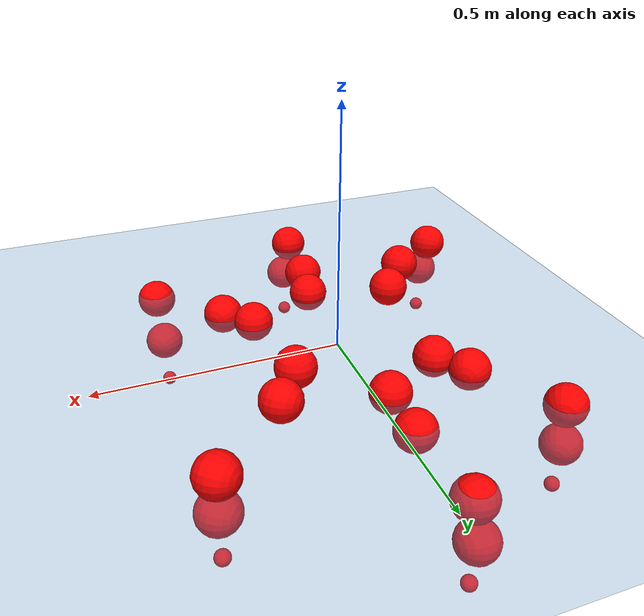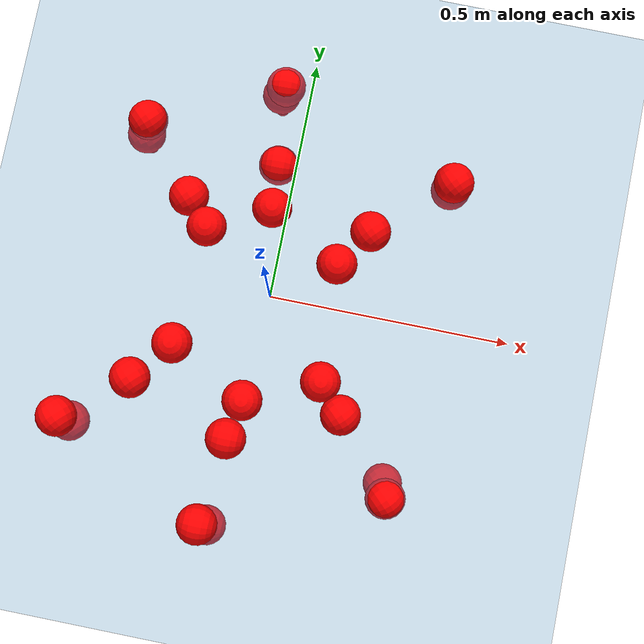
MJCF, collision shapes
<mujoco model="Golem">
  <compiler angle="radian" assetdir="assets" balanceinertia="true" inertiafromgeom="false"/>

  <option timestep="0.005" density="1.2" viscosity="2e-05"/>

  <size nkey="1"/>

  <visual>
    <quality shadowsize="8192"/>
    <map shadowclip="0.5"/>
  </visual>

  <default>
    <default class="/">
      <joint armature="0.01" damping="0.01" frictionloss="0.01"/>
      <geom contype="0" conaffinity="0" group="1" solref="-1000 -80"/>
      <site size="0.01 0.005 0.005" group="5"/>
      <general forcelimited="true" biastype="affine" gainprm="25" biasprm="0 -25 -0.5"/>
      <default class="visual">
        <geom type="mesh" group="2"/>
      </default>
      <default class="collision">
        <geom group="3"/>
      </default>
      <default class="foot">
        <geom size="0.01 0 0" condim="6" group="4" priority="1" solimp="0.015 1 0.01"/>
      </default>
      <default class="reward_collision_sphere">
        <geom group="5" rgba="1 0 0 1"/>
      </default>
    </default>
  </default>

  <asset>
    <texture type="skybox" colorspace="auto" name="//unnamed_texture_0" builtin="gradient" rgb1="0.95 0.95 0.95" rgb2="0.95 0.95 0.95" width="100" height="600"/>
    <texture type="2d" colorspace="auto" name="texplane" builtin="checker" rgb1="0.345 0.575 0.748" rgb2="0.345 0.575 0.748" markrgb="1 1 1" width="512" height="512"/>
    <material name="MatPlane" class="/" texture="texplane" texuniform="true" texrepeat="2 2" specular="0.9"/>
    <mesh name="body" class="/" file="body.stl" scale="0.001 0.001 0.001"/>
    <mesh name="coxa" class="/" file="coxa.stl" scale="0.001 0.001 0.001"/>
    <mesh name="femur" class="/" file="femur.stl" scale="0.001 0.001 0.001"/>
    <mesh name="tibia" class="/" file="tibia.stl" scale="0.001 0.001 0.001"/>
    <mesh name="tarsus" class="/" file="tarsus.stl" scale="0.001 0.001 0.001"/>
  </asset>

  <worldbody>
    <geom name="floor" class="/" size="100 100 0.125" type="plane" group="0" material="MatPlane"/>
    <light name="toplight_shadow" class="/" pos="0 0 5" dir="0.0990148 0.0990148 -0.990148" type="directional" ambient="0.04 0.04 0.04" diffuse="0.55 0.55 0.55" specular="0.12 0.12 0.12"/>
    <light name="toplight_fill" class="/" pos="0 0 5" dir="0.0990148 0.0990148 -0.990148" type="directional" castshadow="false" ambient="0.04 0.04 0.04" diffuse="0.3 0.3 0.3" specular="0.08 0.08 0.08"/>
    <body name="trunk" pos="-0.0181605 -0.0130066 -0.0123281" quat="1 1.105e-05 -1.65903e-05 -3.68395e-06">
      <inertial pos="-0.00864774 -0.00743464 -0.00747809" quat="0.999779 0.0169178 0.0050231 -0.0114298" mass="4.43904" diaginertia="0.0154785 0.156197 0.000143417"/>
      <joint name="//unnamed_joint_0" type="free"/>
      <geom name="//unnamed_geom_1" class="/" pos="0 0 0.0275619" quat="1 0 0 0" type="mesh" rgba="0.9 0.9 0.9 1" mesh="body"/>
      <site name="imu" class="/" pos="0.0461408 -0.0840115 -0.00257744" size="0.0105677"/>
      <camera name="track" class="/" pos="0 -3.44148 0" quat="0.707107 0.707107 0 0" mode="trackcom"/>
      <camera name="ego_camera" class="/" pos="0.132459 0 0.0430655" quat="-0.5 -0.5 0.5 0.5"/>
      <body name="coxa_RR" pos="-0.179684 -0.14392 0.0458537" quat="0.384072 0.000126468 5.63401e-05 -0.923303">
        <inertial pos="0.00306799 0.0188676 0.0109866" quat="0.997391 0.0527197 -0.00895346 -0.0484967" mass="0.264067" diaginertia="0.011716 0.161356 0.00015946"/>
        <joint name="coxa_joint_RR" class="/" pos="0 0 0" axis="0.0443955 -0.0336172 -0.998448" stiffness="0.0843354" range="-3.09477 3.07855" armature="0.0183201" damping="0.0585434" frictionloss="0.0105156"/>
        <geom name="//unnamed_geom_2" class="/" type="mesh" rgba="0.2 0.2 0.2 1" mesh="coxa"/>
        <geom name="//unnamed_geom_3" class="reward_collision_sphere" size="0.0422708" pos="-0.0305674 0 0"/>
        <body name="femur_RR" pos="0.0782107 0.0118618 0.00686351" quat="0.500415 -0.498763 0.500053 0.500767">
          <inertial pos="0.0116454 0.0103707 0.00387951" quat="0.99892 0.0447867 -0.00400809 -0.0116701" mass="0.228808" diaginertia="0.0104128 0.128688 0.000107345"/>
          <joint name="femur_joint_RR" class="/" pos="0 0 0" axis="-0.00963264 0.0433586 -0.999013" stiffness="0.0870115" range="-2.80601 3.42473" armature="0.0151606" damping="0" frictionloss="0.00207825"/>
          <geom name="//unnamed_geom_4" class="/" type="mesh" rgba="0.9 0.9 0.9 1" mesh="femur"/>
          <geom name="//unnamed_geom_5" class="reward_collision_sphere" size="0.0422708"/>
          <body name="tibia_RR" pos="0.0138009 -0.168256 -0.0190953" quat="0.00402115 0.999956 -0.00727418 -0.00424542">
            <inertial pos="0.0167077 0.00758521 1.42572e-05" quat="0.999793 0.00407376 0.00395337 -0.019556" mass="0.221945" diaginertia="0.0137129 0.194886 0.000201331"/>
            <joint name="tibia_joint_RR" class="/" pos="0 0 0" axis="-0.0744463 0.0354201 0.996596" stiffness="0.0179639" range="-3.36322 2.87327" armature="0.0143648" damping="0.0166296" frictionloss="0.0108407"/>
            <geom name="//unnamed_geom_6" class="/" type="mesh" rgba="0.2 0.2 0.2 1" mesh="tibia"/>
            <geom name="//unnamed_geom_7" class="reward_collision_sphere" size="0.0422708"/>
            <body name="tarsus_RR" pos="0.0741238 -0.00558944 -0.0162565" quat="1 0.000549908 0.000205754 -0.000598494">
              <inertial pos="0.0445494 -0.000462031 -0.0114868" quat="0.470191 0.50362 0.529585 0.494799" mass="0.239229" diaginertia="0.00934024 0.123506 0.000151258"/>
              <joint name="tarsus_joint_RR" class="/" pos="0 0 0" axis="0.00283622 -0.00106918 0.999995" stiffness="0.000460057" range="-2.80757 2.8658" armature="0.0152024" damping="0.0127385" frictionloss="0.0167247"/>
              <geom name="//unnamed_geom_8" class="/" type="mesh" rgba="0.9 0.9 0.9 1" mesh="tarsus"/>
              <geom name="foot_1" class="foot" size="0.0117781" pos="0.114118 0 0" quat="0 -0.707107 0 0.707107"/>
              <geom name="//unnamed_geom_10" class="reward_collision_sphere" size="0.0422708"/>
              <geom name="//unnamed_geom_11" class="reward_collision_sphere" size="0.0158516" pos="0.109533 0 0"/>
              <site name="foot_1" class="foot" pos="0.114118 0 0" quat="0 -0.707107 0 0.707107" size="0.0105677"/>
            </body>
          </body>
        </body>
      </body>
      <body name="coxa_RM" pos="0.00398098 -0.239046 0.0181355" quat="0.704703 0.0014743 0.00565475 -0.709479">
        <inertial pos="-0.0146921 0.000242597 0.0114034" quat="0.998401 -0.0495625 -0.0203474 -0.0180077" mass="0.275348" diaginertia="0.0129711 0.190445 0.000125279"/>
        <joint name="coxa_joint_RM" class="/" pos="0 0 0" axis="0.0157926 0.035936 -0.999229" range="-2.93423 2.99001" armature="0.0115634" damping="0.0772048" frictionloss="0.0211105"/>
        <geom name="//unnamed_geom_12" class="/" type="mesh" rgba="0.2 0.2 0.2 1" mesh="coxa"/>
        <geom name="//unnamed_geom_13" class="reward_collision_sphere" size="0.0422708" pos="-0.0305674 0 0"/>
        <body name="femur_RM" pos="0.0515778 -0.0160914 0.00963778" quat="0.505781 -0.494147 0.502365 0.497628">
          <inertial pos="-0.00819974 0.0107509 0.00102518" quat="0.998763 0.0453423 0.0168818 -0.0114782" mass="0.190463" diaginertia="0.00831337 0.137966 0.000108768"/>
          <joint name="femur_joint_RM" class="/" pos="0 0 0" axis="-0.0524768 0.0384867 -0.99788" range="-3.25105 3.18298" armature="0.0165324" damping="0" frictionloss="0.0100488"/>
          <geom name="//unnamed_geom_14" class="/" type="mesh" rgba="0.9 0.9 0.9 1" mesh="femur"/>
          <geom name="//unnamed_geom_15" class="reward_collision_sphere" size="0.0422708"/>
          <body name="tibia_RM" pos="0.0060269 -0.181545 -0.0186382" quat="0.000752283 0.999997 -0.00211441 0.000446578">
            <inertial pos="-0.0140381 0.0185987 -0.00393455" quat="0.996393 -0.0247702 0.0664281 -0.0466285" mass="0.321442" diaginertia="0.012928 0.12957 0.000181385"/>
            <joint name="tibia_joint_RM" class="/" pos="0 0 0" axis="0.0024957 -0.00159009 0.999996" stiffness="0.00478468" range="-2.79923 2.74165" armature="0.0113502" damping="0" frictionloss="0.00626473"/>
            <geom name="//unnamed_geom_16" class="/" type="mesh" rgba="0.2 0.2 0.2 1" mesh="tibia"/>
            <geom name="//unnamed_geom_17" class="reward_collision_sphere" size="0.0422708"/>
            <body name="tarsus_RM" pos="0.0865781 0.00740814 -0.0137461" quat="0.999999 -0.000246949 0.000522644 -0.00106291">
              <inertial pos="0.0532754 0.0138799 -0.0150216" quat="0.439441 0.466025 0.538165 0.547805" mass="0.185162" diaginertia="0.0135368 0.178862 0.000180056"/>
              <joint name="tarsus_joint_RM" class="/" pos="0 0 0" axis="-0.00477084 -0.0242736 0.999694" stiffness="0.0712017" range="-3.41017 3.31617" armature="0.00454275" damping="0.0158932" frictionloss="0.0122572"/>
              <geom name="//unnamed_geom_18" class="/" type="mesh" rgba="0.9 0.9 0.9 1" mesh="tarsus"/>
              <geom name="foot_2" class="foot" size="0.00713063" pos="0.114118 0 0" quat="0 -0.707107 0 0.707107"/>
              <geom name="//unnamed_geom_20" class="reward_collision_sphere" size="0.0422708"/>
              <geom name="//unnamed_geom_21" class="reward_collision_sphere" size="0.0158516" pos="0.109533 0 0"/>
              <site name="foot_2" class="foot" pos="0.114118 0 0" quat="0 -0.707107 0 0.707107" size="0.0105677"/>
            </body>
          </body>
        </body>
      </body>
      <body name="coxa_RF" pos="0.176589 -0.161168 0.0108363" quat="0.923589 0.000800524 0.00214048 -0.383378">
        <inertial pos="0.00934362 -0.012487 -0.00430033" quat="0.999968 0.000610491 -0.00342702 -0.00720537" mass="0.219025" diaginertia="0.0108528 0.120459 0.000153716"/>
        <joint name="coxa_joint_RF" class="/" pos="0 0 0" axis="-0.0152909 0.0192912 -0.999697" range="-3.22443 2.97025" armature="0.00200208" damping="0" frictionloss="0.00785437"/>
        <geom name="//unnamed_geom_22" class="/" type="mesh" rgba="0.2 0.2 0.2 1" mesh="coxa"/>
        <geom name="//unnamed_geom_23" class="reward_collision_sphere" size="0.0422708" pos="-0.0305674 0 0"/>
        <body name="femur_RF" pos="0.0487028 -0.00341399 -0.0014704" quat="0.495689 -0.501404 0.501061 0.501821">
          <inertial pos="-0.010724 0.0136491 -0.00439702" quat="0.9985 0.0283671 0.0426449 -0.0193506" mass="0.264581" diaginertia="0.0107544 0.20121 0.000132436"/>
          <joint name="femur_joint_RF" class="/" pos="0 0 0" axis="-0.000230038 -0.000204934 -1" range="-2.76968 2.95122" armature="0.0200568" damping="0.0231561" frictionloss="0.00246867"/>
          <geom name="//unnamed_geom_24" class="/" type="mesh" rgba="0.9 0.9 0.9 1" mesh="femur"/>
          <geom name="//unnamed_geom_25" class="reward_collision_sphere" size="0.0422708"/>
          <body name="tibia_RF" pos="0.0153809 -0.193139 -0.0191414" quat="-0.0004829 0.999998 0.00172907 0.000913265">
            <inertial pos="0.0189877 0.00501046 0.00774491" quat="0.999983 -0.000369032 -0.00534728 -0.00233" mass="0.166239" diaginertia="0.0115129 0.1132 0.000125218"/>
            <joint name="tibia_joint_RF" class="/" pos="0 0 0" axis="0.0542295 0.0749061 0.995715" range="-2.96867 3.51138" armature="0.0154203" damping="0.0156088" frictionloss="0.0110899"/>
            <geom name="//unnamed_geom_26" class="/" type="mesh" rgba="0.2 0.2 0.2 1" mesh="tibia"/>
            <geom name="//unnamed_geom_27" class="reward_collision_sphere" size="0.0422708"/>
            <body name="tarsus_RF" pos="0.102449 -0.0175261 -0.0162803" quat="0.99996 -0.00395169 0.00767278 0.00233159">
              <inertial pos="0.062327 -0.00764127 -0.00417774" quat="0.494416 0.496711 0.518695 0.48968" mass="0.246836" diaginertia="0.00974393 0.161451 0.000121435"/>
              <joint name="tarsus_joint_RF" class="/" pos="0 0 0" axis="0.0423076 -0.0513964 0.997782" stiffness="0.0519941" range="-2.92979 3.30753" armature="0.0041971" damping="0" frictionloss="0.0168827"/>
              <geom name="//unnamed_geom_28" class="/" type="mesh" rgba="0.9 0.9 0.9 1" mesh="tarsus"/>
              <geom name="foot_3" class="foot" size="0.00465214" pos="0.114118 0 0" quat="0 -0.707107 0 0.707107"/>
              <geom name="//unnamed_geom_30" class="reward_collision_sphere" size="0.0422708"/>
              <geom name="//unnamed_geom_31" class="reward_collision_sphere" size="0.0158516" pos="0.109533 0 0"/>
              <site name="foot_3" class="foot" pos="0.114118 0 0" quat="0 -0.707107 0 0.707107" size="0.0105677"/>
            </body>
          </body>
        </body>
      </body>
      <body name="coxa_LR" pos="-0.162636 0.152096 0.0210761" quat="0.385267 -0.000971243 -0.000287644 0.922804">
        <inertial pos="0.0176374 -0.0119519 0.0195288" quat="0.995658 -0.0684038 -0.0508017 0.0374863" mass="0.226845" diaginertia="0.00850725 0.0928018 0.000106655"/>
        <joint name="coxa_joint_LR" class="/" pos="0 0 0" axis="0.0590747 0.0672942 -0.995983" range="-2.96143 3.38418" armature="0.0173507" damping="0.0439706" frictionloss="0.018834"/>
        <geom name="//unnamed_geom_32" class="/" type="mesh" rgba="0.2 0.2 0.2 1" mesh="coxa"/>
        <geom name="//unnamed_geom_33" class="reward_collision_sphere" size="0.0422708" pos="-0.0305674 0 0"/>
        <body name="femur_LR" pos="0.0453318 -0.00453078 -0.0064322" quat="0.499605 -0.501326 0.500052 0.499014">
          <inertial pos="0.0103322 -0.00560852 0.00566054" quat="0.998039 -0.0287906 -0.0248664 -0.0497148" mass="0.235036" diaginertia="0.0100384 0.115268 0.000150341"/>
          <joint name="femur_joint_LR" class="/" pos="0 0 0" axis="0.032206 0.0570033 0.997854" range="-3.32303 3.24135" armature="0.00692269" damping="0" frictionloss="0.0206699"/>
          <geom name="//unnamed_geom_34" class="/" type="mesh" rgba="0.9 0.9 0.9 1" mesh="femur"/>
          <geom name="//unnamed_geom_35" class="reward_collision_sphere" size="0.0422708"/>
          <body name="tibia_LR" pos="0.0149776 -0.189056 -0.0167182" quat="-0.000235569 0.999962 -0.0048809 0.00719065">
            <inertial pos="-0.00476074 -0.00474028 0.000152118" quat="0.99939 -0.00597495 -0.0328904 0.010133" mass="0.176921" diaginertia="0.00879459 0.142967 0.000135875"/>
            <joint name="tibia_joint_LR" class="/" pos="0 0 0" axis="0.0491996 -0.038559 -0.998044" range="-2.89769 3.45058" armature="0.0131542" damping="0.0371494" frictionloss="0.00777289"/>
            <geom name="//unnamed_geom_36" class="/" type="mesh" rgba="0.2 0.2 0.2 1" mesh="tibia"/>
            <geom name="//unnamed_geom_37" class="reward_collision_sphere" size="0.0422708"/>
            <body name="tarsus_LR" pos="0.106472 0.00489253 -0.0153316" quat="0.99996 0.00431607 0.00758692 -0.00200663">
              <inertial pos="0.0421349 -0.000257138 0.0188639" quat="0.511072 0.493763 0.50102 0.493946" mass="0.243326" diaginertia="0.00934427 0.157347 0.000139151"/>
              <joint name="tarsus_joint_LR" class="/" pos="0 0 0" axis="-0.0561874 -0.0633737 -0.996407" stiffness="0.0218567" range="-2.81533 3.46312" armature="0.00761215" damping="0.0533005" frictionloss="0.00532111"/>
              <geom name="//unnamed_geom_38" class="/" type="mesh" rgba="0.9 0.9 0.9 1" mesh="tarsus"/>
              <geom name="foot_4" class="foot" size="0.00546074" pos="0.114118 0 0" quat="0.707107 0 -0.707107 0"/>
              <geom name="//unnamed_geom_40" class="reward_collision_sphere" size="0.0422708"/>
              <geom name="//unnamed_geom_41" class="reward_collision_sphere" size="0.0158516" pos="0.109533 0 0"/>
              <site name="foot_4" class="foot" pos="0.114118 0 0" quat="0.707107 0 -0.707107 0" size="0.0105677"/>
            </body>
          </body>
        </body>
      </body>
      <body name="coxa_LM" pos="-0.015473 0.228098 0.0112455" quat="0.703375 -0.000570645 0.00230375 0.710815">
        <inertial pos="-0.00858139 0.00992872 -0.00228844" quat="0.997669 -0.0373305 -0.0341969 0.045751" mass="0.266841" diaginertia="0.014274 0.156319 0.000170315"/>
        <joint name="coxa_joint_LM" class="/" pos="0 0 0" axis="-0.0303822 -0.0125555 -0.999459" stiffness="0.0672811" range="-3.46189 3.04112" armature="0.004263" damping="0" frictionloss="0.00234504"/>
        <geom name="//unnamed_geom_42" class="/" type="mesh" rgba="0.2 0.2 0.2 1" mesh="coxa"/>
        <geom name="//unnamed_geom_43" class="reward_collision_sphere" size="0.0422708" pos="-0.0305674 0 0"/>
        <body name="femur_LM" pos="0.0653147 0.00465535 -0.0187167" quat="0.502813 -0.504232 0.495595 0.497308">
          <inertial pos="-0.0116288 0.0162001 -0.0193269" quat="0.995916 0.0350053 0.0505369 -0.0661183" mass="0.211261" diaginertia="0.00829183 0.167613 0.000114937"/>
          <joint name="femur_joint_LM" class="/" pos="0 0 0" axis="0.058835 -0.0337405 0.997697" range="-3.17489 3.45335" armature="0.00444386" damping="0" frictionloss="0.00921859"/>
          <geom name="//unnamed_geom_44" class="/" type="mesh" rgba="0.9 0.9 0.9 1" mesh="femur"/>
          <geom name="//unnamed_geom_45" class="reward_collision_sphere" size="0.0422708"/>
          <body name="tibia_LM" pos="0.0122969 -0.174334 0.0166123" quat="0.00337123 0.999953 0.00485357 -0.00766031">
            <inertial pos="-0.00785964 0.019961 -0.00951413" quat="0.997612 -0.0237245 0.0383662 0.0523109" mass="0.263926" diaginertia="0.00957569 0.117788 0.00012923"/>
            <joint name="tibia_joint_LM" class="/" pos="0 0 0" axis="0.0103508 -0.00526718 -0.999933" stiffness="0.0198936" range="-3.2046 2.95193" armature="0.0023292" damping="0.0958486" frictionloss="0.0170646"/>
            <geom name="//unnamed_geom_46" class="/" type="mesh" rgba="0.2 0.2 0.2 1" mesh="tibia"/>
            <geom name="//unnamed_geom_47" class="reward_collision_sphere" size="0.0422708"/>
            <body name="tarsus_LM" pos="0.0962118 0.00771449 -0.0134503" quat="0.999951 0.00735507 0.000930026 -0.00662864">
              <inertial pos="0.0754278 0.00422733 0.0122414" quat="0.500559 0.498339 0.500014 0.501084" mass="0.241229" diaginertia="0.0154141 0.205639 0.000149625"/>
              <joint name="tarsus_joint_LM" class="/" pos="0 0 0" axis="0.0119746 -0.00182705 -0.999927" stiffness="0.00598812" range="-3.52411 2.971" armature="0.00183693" damping="0.108359" frictionloss="0.00496603"/>
              <geom name="//unnamed_geom_48" class="/" type="mesh" rgba="0.9 0.9 0.9 1" mesh="tarsus"/>
              <geom name="foot_5" class="foot" size="0.00650167" pos="0.114118 0 0" quat="0.707107 0 -0.707107 0"/>
              <geom name="//unnamed_geom_50" class="reward_collision_sphere" size="0.0422708"/>
              <geom name="//unnamed_geom_51" class="reward_collision_sphere" size="0.0158516" pos="0.109533 0 0"/>
              <site name="foot_5" class="foot" pos="0.114118 0 0" quat="0.707107 0 -0.707107 0" size="0.0105677"/>
            </body>
          </body>
        </body>
      </body>
      <body name="coxa_LF" pos="0.162119 0.124584 0.0461404" quat="0.923542 -0.00139167 -0.00212137 0.383488">
        <inertial pos="0.00521271 -0.00549213 0.0104316" quat="0.997466 0.0430505 0.0370953 0.0427947" mass="0.336944" diaginertia="0.0126807 0.178343 0.000197366"/>
        <joint name="coxa_joint_LF" class="/" pos="0 0 0" axis="-0.0038962 0.0261751 -0.99965" range="-2.91542 2.75614" armature="0.00242229" damping="0.105244" frictionloss="0.0179646"/>
        <geom name="//unnamed_geom_52" class="/" type="mesh" rgba="0.2 0.2 0.2 1" mesh="coxa"/>
        <geom name="//unnamed_geom_53" class="reward_collision_sphere" size="0.0422708" pos="-0.0305674 0 0"/>
        <body name="femur_LF" pos="0.0658735 0.0178763 -0.00602463" quat="0.501583 -0.502186 0.49245 0.503703">
          <inertial pos="-0.0189406 -0.00212748 -0.00512582" quat="0.999055 0.0131194 -0.00816152 -0.0406214" mass="0.286624" diaginertia="0.0119473 0.175077 0.000192768"/>
          <joint name="femur_joint_LF" class="/" pos="0 0 0" axis="0.0181734 0.0153216 0.999717" stiffness="0.0160841" range="-3.408 2.98877" armature="0.00236458" damping="0" frictionloss="0.0150418"/>
          <geom name="//unnamed_geom_54" class="/" type="mesh" rgba="0.9 0.9 0.9 1" mesh="femur"/>
          <geom name="//unnamed_geom_55" class="reward_collision_sphere" size="0.0422708"/>
          <body name="tibia_LF" pos="0.0102089 -0.20319 -0.0133518" quat="0.0019486 0.999996 -0.00187646 -0.000723209">
            <inertial pos="-0.00091704 -0.0148952 -0.0110997" quat="0.998999 -0.0242134 0.0127249 0.035382" mass="0.275479" diaginertia="0.0124778 0.143579 0.000147285"/>
            <joint name="tibia_joint_LF" class="/" pos="0 0 0" axis="0.0145387 0.0319786 -0.999383" stiffness="0.0628237" range="-3.11439 3.03043" armature="0.0182884" damping="0.0766852" frictionloss="0.00425161"/>
            <geom name="//unnamed_geom_56" class="/" type="mesh" rgba="0.2 0.2 0.2 1" mesh="tibia"/>
            <geom name="//unnamed_geom_57" class="reward_collision_sphere" size="0.0422708"/>
            <body name="tarsus_LF" pos="0.0804849 0.00201273 0.00229636" quat="0.999959 -0.00537476 -0.00686561 -0.00249517">
              <inertial pos="0.0639481 -0.00448924 0.0116662" quat="0.465183 0.459176 0.53397 0.53632" mass="0.177368" diaginertia="0.00911164 0.107878 0.00011208"/>
              <joint name="tarsus_joint_LF" class="/" pos="0 0 0" axis="0.0444031 -0.0391293 -0.998247" range="-2.83389 2.90598" armature="0.0117335" damping="0.105818" frictionloss="0.0133509"/>
              <geom name="//unnamed_geom_58" class="/" type="mesh" rgba="0.9 0.9 0.9 1" mesh="tarsus"/>
              <geom name="foot_6" class="foot" size="0.0102354" pos="0.114118 0 0" quat="0.707107 0 -0.707107 0"/>
              <geom name="//unnamed_geom_60" class="reward_collision_sphere" size="0.0422708"/>
              <geom name="//unnamed_geom_61" class="reward_collision_sphere" size="0.0158516" pos="0.109533 0 0"/>
              <site name="foot_6" class="foot" pos="0.114118 0 0" quat="0.707107 0 -0.707107 0" size="0.0105677"/>
            </body>
          </body>
        </body>
      </body>
    </body>
  </worldbody>

  <contact>
    <pair class="/" geom1="floor" geom2="foot_1" name="//unnamed_contact_0"/>
    <pair class="/" geom1="floor" geom2="foot_2" name="//unnamed_contact_1"/>
    <pair class="/" geom1="floor" geom2="foot_3" name="//unnamed_contact_2"/>
    <pair class="/" geom1="floor" geom2="foot_4" name="//unnamed_contact_3"/>
    <pair class="/" geom1="floor" geom2="foot_5" name="//unnamed_contact_4"/>
    <pair class="/" geom1="floor" geom2="foot_6" name="//unnamed_contact_5"/>
  </contact>

  <actuator>
    <general name="coxa_joint_RR" class="/" joint="coxa_joint_RR" forcerange="-6.01745 6.01745" gainprm="20.5749" biasprm="0 -20.5749 -0.60864"/>
    <general name="femur_joint_RR" class="/" joint="femur_joint_RR" forcerange="-8.21563 8.21563" gainprm="20.5749" biasprm="0 -20.5749 -0.60864"/>
    <general name="tibia_joint_RR" class="/" joint="tibia_joint_RR" forcerange="-6.87723 6.87723" gainprm="20.5749" biasprm="0 -20.5749 -0.60864"/>
    <general name="tarsus_joint_RR" class="/" joint="tarsus_joint_RR" forcerange="-3.34643 3.34643" gainprm="20.5749" biasprm="0 -20.5749 -0.60864"/>
    <general name="coxa_joint_RM" class="/" joint="coxa_joint_RM" forcerange="-13.1048 13.1048" gainprm="20.5749" biasprm="0 -20.5749 -0.60864"/>
    <general name="femur_joint_RM" class="/" joint="femur_joint_RM" forcerange="-9.92803 9.92803" gainprm="20.5749" biasprm="0 -20.5749 -0.60864"/>
    <general name="tibia_joint_RM" class="/" joint="tibia_joint_RM" forcerange="-11.5682 11.5682" gainprm="20.5749" biasprm="0 -20.5749 -0.60864"/>
    <general name="tarsus_joint_RM" class="/" joint="tarsus_joint_RM" forcerange="-6.06501 6.06501" gainprm="20.5749" biasprm="0 -20.5749 -0.60864"/>
    <general name="coxa_joint_RF" class="/" joint="coxa_joint_RF" forcerange="-12.8626 12.8626" gainprm="20.5749" biasprm="0 -20.5749 -0.60864"/>
    <general name="femur_joint_RF" class="/" joint="femur_joint_RF" forcerange="-11.33 11.33" gainprm="20.5749" biasprm="0 -20.5749 -0.60864"/>
    <general name="tibia_joint_RF" class="/" joint="tibia_joint_RF" forcerange="-13.2631 13.2631" gainprm="20.5749" biasprm="0 -20.5749 -0.60864"/>
    <general name="tarsus_joint_RF" class="/" joint="tarsus_joint_RF" forcerange="-4.21278 4.21278" gainprm="20.5749" biasprm="0 -20.5749 -0.60864"/>
    <general name="coxa_joint_LR" class="/" joint="coxa_joint_LR" forcerange="-7.45024 7.45024" gainprm="20.5749" biasprm="0 -20.5749 -0.60864"/>
    <general name="femur_joint_LR" class="/" joint="femur_joint_LR" forcerange="-6.39351 6.39351" gainprm="20.5749" biasprm="0 -20.5749 -0.60864"/>
    <general name="tibia_joint_LR" class="/" joint="tibia_joint_LR" forcerange="-9.03238 9.03238" gainprm="20.5749" biasprm="0 -20.5749 -0.60864"/>
    <general name="tarsus_joint_LR" class="/" joint="tarsus_joint_LR" forcerange="-4.82406 4.82406" gainprm="20.5749" biasprm="0 -20.5749 -0.60864"/>
    <general name="coxa_joint_LM" class="/" joint="coxa_joint_LM" forcerange="-3.09124 3.09124" gainprm="20.5749" biasprm="0 -20.5749 -0.60864"/>
    <general name="femur_joint_LM" class="/" joint="femur_joint_LM" forcerange="-7.44384 7.44384" gainprm="20.5749" biasprm="0 -20.5749 -0.60864"/>
    <general name="tibia_joint_LM" class="/" joint="tibia_joint_LM" forcerange="-9.32834 9.32834" gainprm="20.5749" biasprm="0 -20.5749 -0.60864"/>
    <general name="tarsus_joint_LM" class="/" joint="tarsus_joint_LM" forcerange="-6.37229 6.37229" gainprm="20.5749" biasprm="0 -20.5749 -0.60864"/>
    <general name="coxa_joint_LF" class="/" joint="coxa_joint_LF" forcerange="-13.3549 13.3549" gainprm="20.5749" biasprm="0 -20.5749 -0.60864"/>
    <general name="femur_joint_LF" class="/" joint="femur_joint_LF" forcerange="-6.62656 6.62656" gainprm="20.5749" biasprm="0 -20.5749 -0.60864"/>
    <general name="tibia_joint_LF" class="/" joint="tibia_joint_LF" forcerange="-5.39796 5.39796" gainprm="20.5749" biasprm="0 -20.5749 -0.60864"/>
    <general name="tarsus_joint_LF" class="/" joint="tarsus_joint_LF" forcerange="-11.3467 11.3467" gainprm="20.5749" biasprm="0 -20.5749 -0.60864"/>
  </actuator>

  <sensor>
    <gyro site="imu" name="imu_angular_velocity"/>
    <velocimeter site="imu" name="imu_linear_velocity"/>
    <framelinvel objtype="site" objname="foot_1" name="foot_1_global_linear_velocity"/>
    <framelinvel objtype="site" objname="foot_2" name="foot_2_global_linear_velocity"/>
    <framelinvel objtype="site" objname="foot_3" name="foot_3_global_linear_velocity"/>
    <framelinvel objtype="site" objname="foot_4" name="foot_4_global_linear_velocity"/>
    <framelinvel objtype="site" objname="foot_5" name="foot_5_global_linear_velocity"/>
    <framelinvel objtype="site" objname="foot_6" name="foot_6_global_linear_velocity"/>
  </sensor>

  <keyframe>
    <key name="home" qpos="0 0 0.1457 1 0 0 0 0 0 0 0 0 0 0 0 0 0 0 0 0 0 0 0 0 0 0 0 0 0 0 0"/>
  </keyframe>
</mujoco>
